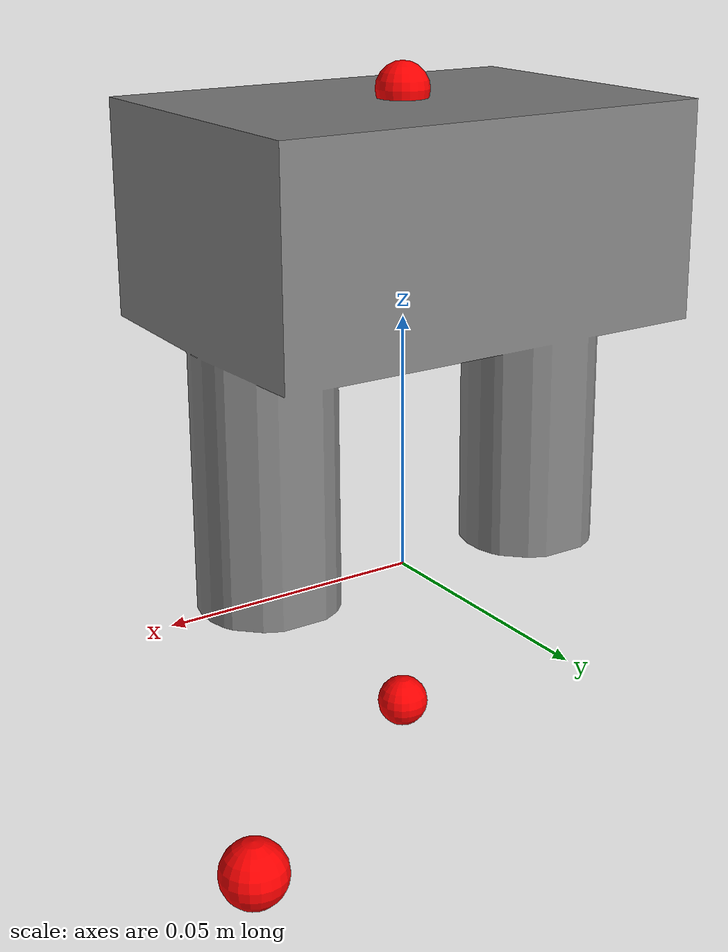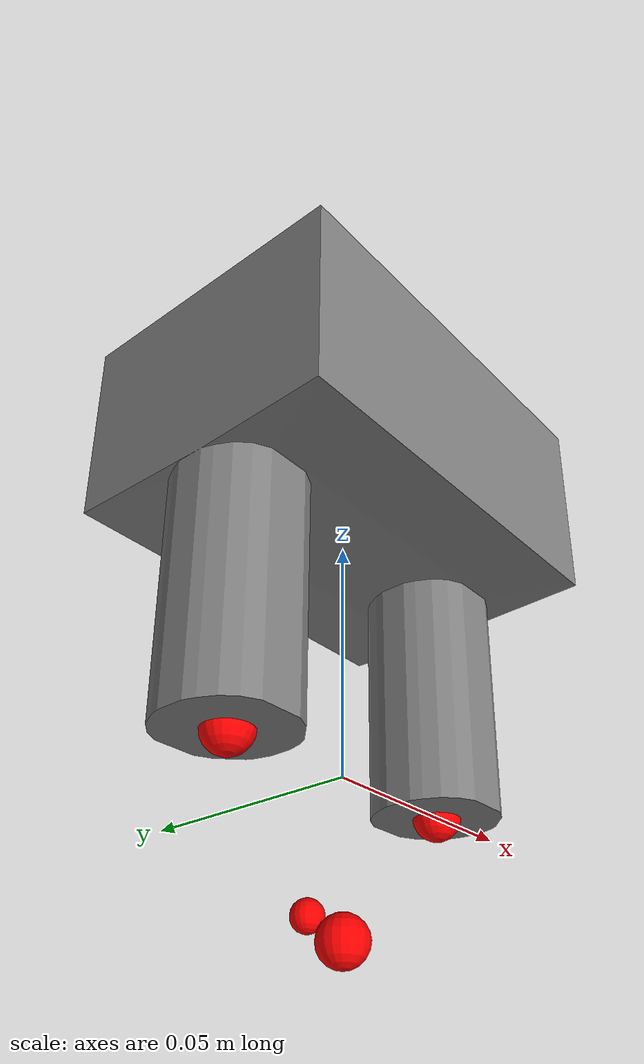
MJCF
<mujoco model="peg_circle">
  <asset>
    <mesh file="meshes/peg_circle4.stl" name="peg_circle_mesh" scale="1.0 1.0 1.0"/>
    <mesh file="meshes/pegcircle_vhacd.stl" name="peg_circle_collision" scale="1.0 1.0 1.0"/>
    <texture file="../textures/steel-scratched.png" type="cube" name="steel-metal"/>
    <material name="smetal" reflectance="1.0" shininess="1.0" specular="1.0" texrepeat="1 1" texture="steel-metal" texuniform="true"/>
  </asset>
  <worldbody>
    <body>
      <body name="object">
      <geom pos="0 0 0" quat="0.707107 0.707107 0 0" mesh="peg_circle_collision" type="mesh"  friction="0.95 0.3 0.99"  group="0"    />
        <geom pos="0 0 0" quat="0.707107 0.707107 0 0" mesh="peg_circle_mesh" type="mesh" solimp="0.998 0.998 0.998" solref="0.001 1" density="100" friction="0.95 0.3 0.99"  group="1" condim="4" rgba = '1 0 0 1' material='smetal'  />

        <site rgba="1 0 0 1" size="0.005" pos="0.03 0 0.0" name="handle1_site"/>
        <site rgba="1 0 0 1" size="0.005" pos="-0.03 0 0.0" name="handle2_site"/>
      </body>
      <site rgba="1 0 0 1" size="0.005" pos="0 0 -0.03" name="bottom_site"/>
      <site rgba="1 0 0 1" size="0.005" pos="0 0 0.092" name="top_site"/>
      <site rgba="1 0 0 1" size="0.005" pos="0.075 0.075 0" name="horizontal_radius_site"/>
    </body>
  </worldbody>
</mujoco>
